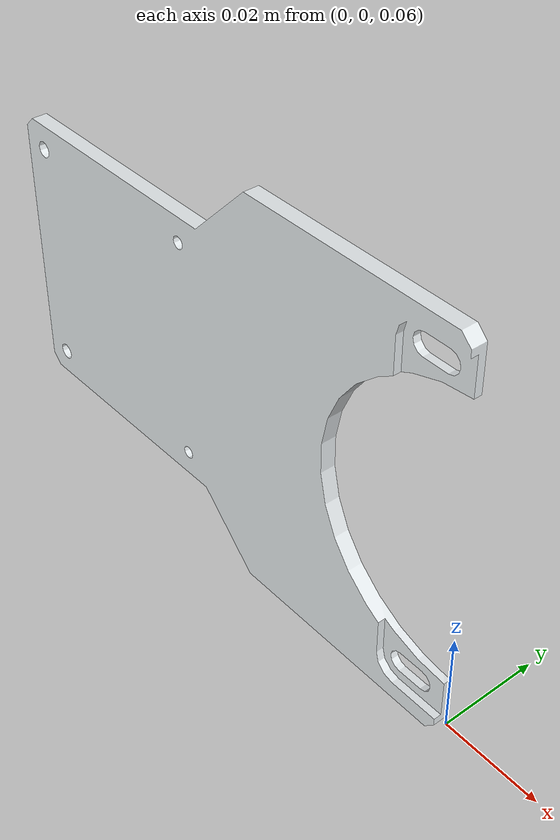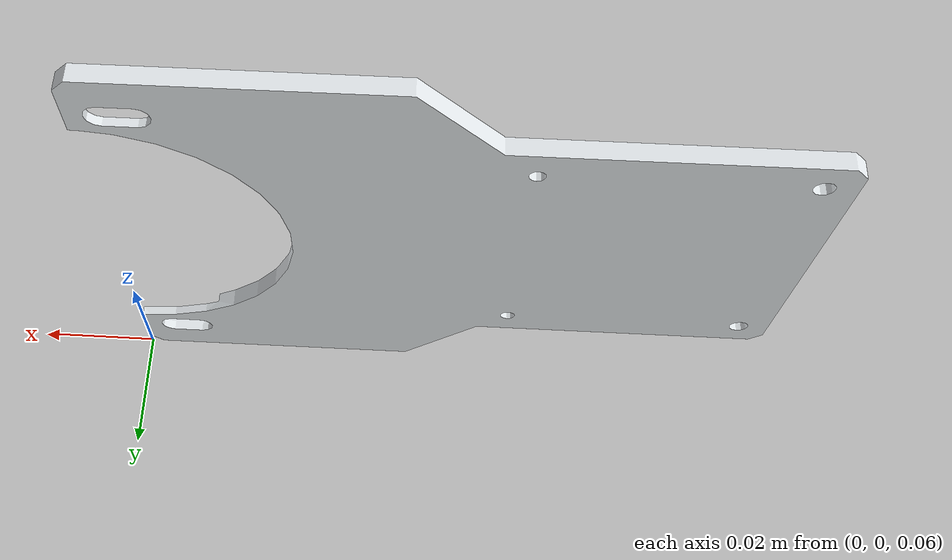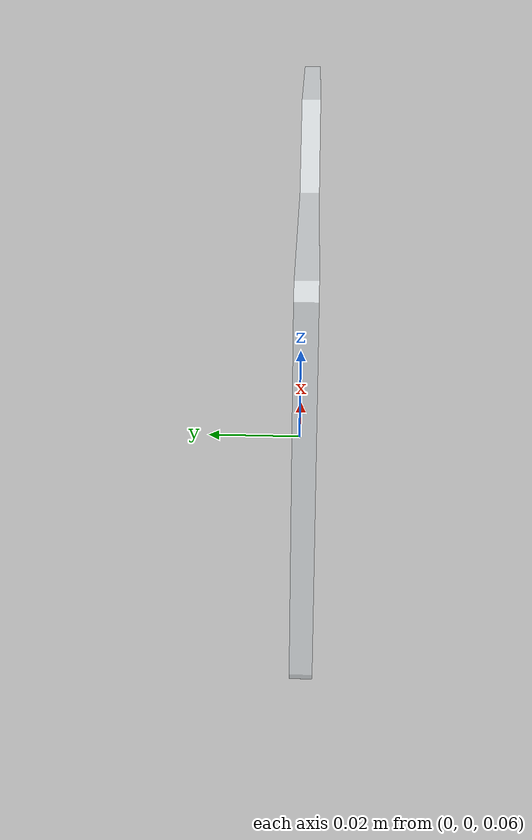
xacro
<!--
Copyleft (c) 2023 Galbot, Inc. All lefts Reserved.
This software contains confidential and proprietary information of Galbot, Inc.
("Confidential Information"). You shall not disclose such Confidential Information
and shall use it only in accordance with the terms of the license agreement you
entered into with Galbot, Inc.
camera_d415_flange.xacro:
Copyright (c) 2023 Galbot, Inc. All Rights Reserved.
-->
<?xml version="1.0"?>
<robot name="test_camera_d415_flange" xmlns:xacro="http://ros.org/wiki/xacro">
    <!-- Include-->
    <xacro:include filename="$(find galbot_description)/urdf/adapter/camera_d415_flange.xacro" />
    <!-- Properties -->
    <xacro:property name="M_PI" value="3.1415926535897931" />
    <!-- Parent link -->
    <link name="base_link" />
    <xacro:camera_d415_flange parent="base_link" name="left_camera_d415_flange">
        <origin xyz="0 0 0.1" rpy="0 0 0" />
    </xacro:camera_d415_flange>
</robot>

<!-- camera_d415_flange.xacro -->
<robot name="camera_d415_flange" xmlns:xacro="http://ros.org/wiki/xacro">

    <xacro:macro name="camera_d415_flange"
        params="parent *origin  name:=camera_d415_flange">
        <xacro:property name="M_PI" value="3.1415926535897931" />

        <joint name="${name}_joint" type="fixed">
            <xacro:insert_block name="origin" />
            <parent link="${parent}" />
            <child link="${name}_link" />
        </joint>

        <link name="${name}_link">
                <inertial>
                  <origin rpy="0 0 0" xyz="0.0592822351376299 -0.00148955992172333 -1.22797983111768E-18"/>
                  <mass value="0.0176545384826988"/>
                  <inertia ixx="7.7882126527069E-06" ixy="9.59349299176604E-09" ixz="6.26265028189193E-22" iyy="2.12052757044674E-05" iyz="1.57916543683687E-22" izz="1.34435410109635E-05"/>
                </inertial>
                <visual>
                  <origin rpy="0 0 0" xyz="0 0 0"/>
                  <geometry>
                    <mesh filename="package://galbot_description/meshes/adapter/camera_d415_flange.stl"/>
                  </geometry>
                  <material name="">
                    <color rgba="0.898039215686275 0.917647058823529 0.929411764705882 1"/>
                  </material>
                </visual>
                <collision>
                  <origin rpy="0 0 0" xyz="0 0 0"/>
                  <geometry>
                    <mesh filename="package://galbot_description/meshes/adapter/camera_d415_flange.stl"/>
                  </geometry>
                </collision>
              </link>

    </xacro:macro>
</robot>
